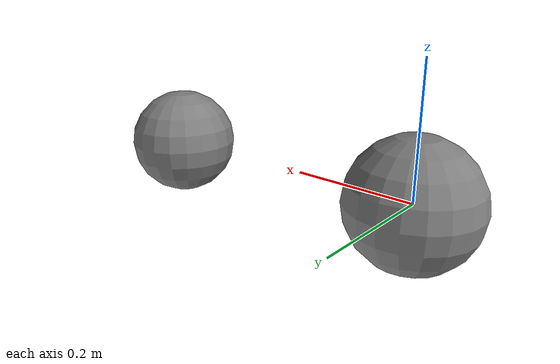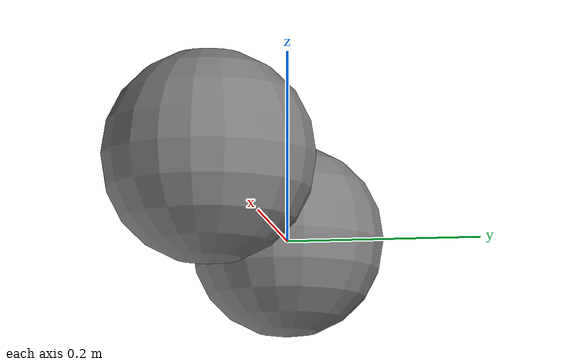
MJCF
<mujoco model="sensor_deriv_test">
            <worldbody>
                <body name="b1" pos="0 0 0">
                    <joint name="j1" type="hinge" axis="0 1 0"/>
                    <geom type="sphere" size="0.1" mass="1.0"/>
                    <body name="b2" pos="0.5 0 0">
                        <joint name="j2" type="hinge" axis="0 1 0"/>
                        <geom type="sphere" size="0.1" mass="1.0"/>
                    </body>
                </body>
            </worldbody>
            <actuator>
                <motor joint="j1" ctrlrange="-10 10"/>
            </actuator>
            <sensor>
                <jointpos joint="j1"/>
                <jointpos joint="j2"/>
            </sensor>
        </mujoco>
